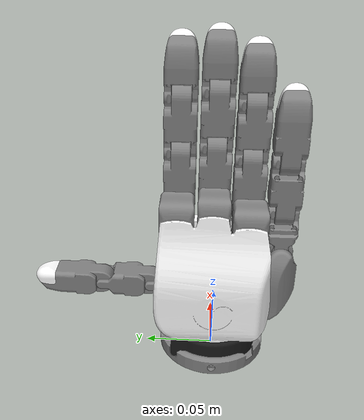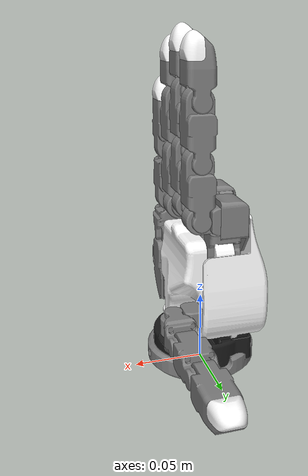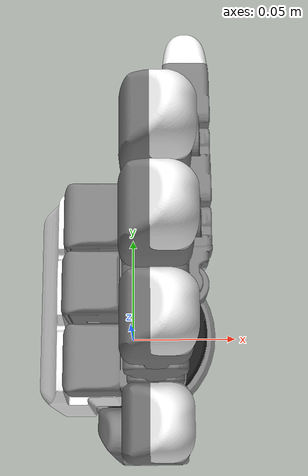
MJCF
<mujoco model="tesollo_dg5f_right_short">
  <compiler angle="radian" meshdir="assets"/>

  <asset>
    <mesh name="rl_dg_s_mount" file="rl_dg_s_mount.obj"/>
    <mesh name="rl_dg_s_base" file="rl_dg_s_base.obj"/>
    <mesh name="rl_dg_palm" file="rl_dg_palm.obj"/>
    <mesh name="rl_dg_1_1" file="rl_dg_1_1.obj"/>
    <mesh name="rl_dg_1_2" file="rl_dg_1_2.obj"/>
    <mesh name="rl_dg_1_3" file="rl_dg_1_3.obj"/>
    <mesh name="rl_dg_1_4" file="rl_dg_1_4.obj"/>
    <mesh name="rl_dg_1_tip" file="rl_dg_1_tip.obj"/>
    <mesh name="rl_dg_2_1" file="rl_dg_2_1.obj"/>
    <mesh name="rl_dg_2_2" file="rl_dg_2_2.obj"/>
    <mesh name="rl_dg_2_3" file="rl_dg_2_3.obj"/>
    <mesh name="rl_dg_2_4" file="rl_dg_2_4.obj"/>
    <mesh name="rl_dg_2_tip" file="rl_dg_2_tip.obj"/>
    <mesh name="rl_dg_3_1" file="rl_dg_3_1.obj"/>
    <mesh name="rl_dg_3_2" file="rl_dg_3_2.obj"/>
    <mesh name="rl_dg_3_3" file="rl_dg_3_3.obj"/>
    <mesh name="rl_dg_3_4" file="rl_dg_3_4.obj"/>
    <mesh name="rl_dg_3_tip" file="rl_dg_3_tip.obj"/>
    <mesh name="rl_dg_4_1" file="rl_dg_4_1.obj"/>
    <mesh name="rl_dg_4_2" file="rl_dg_4_2.obj"/>
    <mesh name="rl_dg_4_3" file="rl_dg_4_3.obj"/>
    <mesh name="rl_dg_4_4" file="rl_dg_4_4.obj"/>
    <mesh name="rl_dg_4_tip" file="rl_dg_4_tip.obj"/>
    <mesh name="rl_dg_5_1" file="rl_dg_5_1.obj"/>
    <mesh name="rl_dg_5_2" file="rl_dg_5_2.obj"/>
    <mesh name="rl_dg_5_3" file="rl_dg_5_3.obj"/>
    <mesh name="rl_dg_5_4" file="rl_dg_5_4.obj"/>
    <mesh name="rl_dg_5_tip" file="rl_dg_5_tip.obj"/>
  </asset>

  <default>
    <default class="dg5f_right_short">
      <default class="visual">
        <geom type="mesh" contype="0" conaffinity="0" group="2" rgba="0.25 0.25 0.25 1"/>
      </default>

      <default class="collision">
        <geom type="mesh" group="3" rgba="0.25 0.25 0.25 1" mass="0"/>
      </default>

      <joint armature="0.001" damping="0.05" frictionloss="0.001" actuatorfrcrange="-7.5 7.5"/>
    </default>
  </default>

  <worldbody>
    <body name="base" childclass="dg5f_right_short">
      <body name="palm">
        <geom type="mesh" mesh="rl_dg_s_mount"/>
        <geom pos="0 0 0.0045" type="mesh" rgba="0.1 0.1 0.1 1" mesh="rl_dg_s_base"/>
        <geom pos="0 0 0.0265" type="mesh" rgba="1 1 1 1" mesh="rl_dg_palm"/>
      </body>
      <body name="rl_dg_1_1" pos="-0.0162 0.019 0.0393">
        <inertial pos="0.021473 3.1163e-06 0.0028146" quat="0.414969 0.572521 0.572945 0.414433" mass="0.045" diaginertia="1.3718e-05 1.31155e-05 3.31624e-06"/>
        <joint name="rj_dg_1_1" axis="1 0 0" range="-0.383972 1.3439"/>
        <geom type="mesh" mesh="rl_dg_1_1"/>
        <body name="rl_dg_1_2" pos="0.04195 0 0">
          <inertial pos="0.00055633 0.0155 0.00055633" quat="0.379972 0.152995 -0.59634 0.690357" mass="0.025" diaginertia="2.07162e-06 1.99661e-06 1.37777e-06"/>
          <joint name="rj_dg_1_2" axis="0 0 -1" range="0 2.70526"/>
          <geom type="mesh" mesh="rl_dg_1_2"/>
          <body name="rl_dg_1_3" pos="0 0.031 0">
            <inertial pos="2.3008e-05 0.014842 4.7446e-06" quat="0.523748 0.473568 -0.525398 0.474739" mass="0.045" diaginertia="6.4181e-06 6.01585e-06 2.42154e-06"/>
            <joint name="rj_dg_1_3" axis="1 0 0" range="-1.5708 1.5708"/>
            <geom type="mesh" mesh="rl_dg_1_3"/>
            <body name="rl_dg_1_4" pos="0 0.0388 0">
              <inertial pos="-0.000182282 0.0140657 0.000732812" quat="0.521074 0.440882 -0.475371 0.555092" mass="0.05" diaginertia="2.0651e-05 2.02971e-05 3.29812e-06"/>
              <joint name="rj_dg_1_4" axis="1 0 0" range="-1.5708 1.5708"/>
              <geom type="mesh" mesh="rl_dg_1_4"/>
              <geom pos="0 0.0363 0" type="mesh" rgba="1 1 1 1" mesh="rl_dg_1_tip"/>
            </body>
          </body>
        </body>
      </body>
      <body name="rl_dg_2_1" pos="-0.0071 0.027 0.0926">
        <inertial pos="0.001061 0.00024417 0.023499" quat="0.632598 0.317074 0.297256 0.641032" mass="0.045" diaginertia="9.53287e-06 8.0012e-06 5.63792e-06"/>
        <joint name="rj_dg_2_1" axis="1 0 0" range="-0.541052 0.349066"/>
        <geom type="mesh" mesh="rl_dg_2_1"/>
        <body name="rl_dg_2_2" pos="0.01765 0 0.0265">
          <inertial pos="-4.7446e-06 2.3008e-05 0.023958" quat="0.998727 0.0504191 0.000239574 0.00141058" mass="0.045" diaginertia="6.4181e-06 6.01585e-06 2.42154e-06"/>
          <joint name="rj_dg_2_2" axis="0 1 0" range="0 2.00713"/>
          <geom type="mesh" mesh="rl_dg_2_2"/>
          <body name="rl_dg_2_3" pos="0 0 0.0388">
            <inertial pos="-4.7446e-06 2.3008e-05 0.023958" quat="0.998727 0.0504191 0.000239574 0.00141058" mass="0.045" diaginertia="6.4181e-06 6.01585e-06 2.42154e-06"/>
            <joint name="rj_dg_2_3" axis="0 1 0" range="-1.5708 1.5708"/>
            <geom type="mesh" mesh="rl_dg_2_3"/>
            <body name="rl_dg_2_4" pos="0 0 0.0388">
              <inertial pos="4.4568e-05 -0.00389127 0.0160588" quat="0.526445 0.843914 -0.0138865 0.10233" mass="0.03" diaginertia="6.58495e-06 5.22897e-06 2.6024e-06"/>
              <joint name="rj_dg_2_4" axis="0 1 0" range="-1.5708 1.5708"/>
              <geom type="mesh" mesh="rl_dg_2_4"/>
              <geom pos="0 0 0.0255" type="mesh" rgba="1 1 1 1" mesh="rl_dg_2_tip"/>
            </body>
          </body>
        </body>
      </body>
      <body name="rl_dg_3_1" pos="-0.0071 0.0025 0.0966">
        <inertial pos="0.0012558 -0.00017703 0.023374" quat="0.648691 0.313074 0.303523 0.623746" mass="0.045" diaginertia="9.33725e-06 7.69718e-06 5.31337e-06"/>
        <joint name="rj_dg_3_1" axis="1 0 0" range="-0.523599 0.523599"/>
        <geom type="mesh" mesh="rl_dg_3_1"/>
        <body name="rl_dg_3_2" pos="0.01765 0 0.0265">
          <inertial pos="-4.7446e-06 2.3008e-05 0.023958" quat="0.998727 0.0504191 0.000239574 0.00141058" mass="0.045" diaginertia="6.4181e-06 6.01585e-06 2.42154e-06"/>
          <joint name="rj_dg_3_2" axis="0 1 0" range="0 2.00713"/>
          <geom type="mesh" mesh="rl_dg_3_2"/>
          <body name="rl_dg_3_3" pos="0 0 0.0388">
            <inertial pos="-4.7446e-06 2.3008e-05 0.023958" quat="0.998727 0.0504191 0.000239574 0.00141058" mass="0.045" diaginertia="6.4181e-06 6.01585e-06 2.42154e-06"/>
            <joint name="rj_dg_3_3" axis="0 1 0" range="-1.5708 1.5708"/>
            <geom type="mesh" mesh="rl_dg_3_3"/>
            <body name="rl_dg_3_4" pos="0 0 0.0388">
              <inertial pos="4.4568e-05 -0.00389127 0.0160588" quat="0.526445 0.843914 -0.0138865 0.10233" mass="0.03" diaginertia="6.58495e-06 5.22897e-06 2.6024e-06"/>
              <joint name="rj_dg_3_4" axis="0 1 0" range="-1.5708 1.5708"/>
              <geom type="mesh" mesh="rl_dg_3_4"/>
              <geom pos="0 0 0.0255" type="mesh" rgba="1 1 1 1" mesh="rl_dg_3_tip"/>
            </body>
          </body>
        </body>
      </body>
      <body name="rl_dg_4_1" pos="-0.0071 -0.022 0.0886">
        <inertial pos="6.0566e-05 -0.00058566 0.023499" quat="0.666108 0.307837 0.308411 0.605327" mass="0.045" diaginertia="9.54523e-06 7.99297e-06 5.6344e-06"/>
        <joint name="rj_dg_4_1" axis="1 0 0" range="-0.261799 0.558505"/>
        <geom type="mesh" mesh="rl_dg_4_1"/>
        <body name="rl_dg_4_2" pos="0.01765 0 0.0265">
          <inertial pos="-4.7446e-06 2.3008e-05 0.023958" quat="0.998727 0.0504191 0.000239574 0.00141058" mass="0.045" diaginertia="6.4181e-06 6.01585e-06 2.42154e-06"/>
          <joint name="rj_dg_4_2" axis="0 1 0" range="0 1.91986"/>
          <geom type="mesh" mesh="rl_dg_4_2"/>
          <body name="rl_dg_4_3" pos="0 0 0.0388">
            <inertial pos="-4.7446e-06 2.3008e-05 0.023958" quat="0.998727 0.0504191 0.000239574 0.00141058" mass="0.045" diaginertia="6.4181e-06 6.01585e-06 2.42154e-06"/>
            <joint name="rj_dg_4_3" axis="0 1 0" range="-1.5708 1.5708"/>
            <geom type="mesh" mesh="rl_dg_4_3"/>
            <body name="rl_dg_4_4" pos="0 0 0.0388">
              <inertial pos="4.4568e-05 -0.00389127 0.0160588" quat="0.526445 0.843914 -0.0138865 0.10233" mass="0.03" diaginertia="6.58495e-06 5.22897e-06 2.6024e-06"/>
              <joint name="rj_dg_4_4" axis="0 1 0" range="-1.5708 1.5708"/>
              <geom type="mesh" mesh="rl_dg_4_4"/>
              <geom pos="0 0 0.0255" type="mesh" rgba="1 1 1 1" mesh="rl_dg_4_tip"/>
            </body>
          </body>
        </body>
      </body>
      <body name="rl_dg_5_1" pos="0.0103 -0.0195 0.0447">
        <inertial pos="-0.00433014 -0.0250157 0.0140244" quat="0.856441 0.0940801 -0.138609 0.488309" mass="0.055" diaginertia="2.56498e-05 2.33809e-05 9.54179e-06"/>
        <joint name="rj_dg_5_1" axis="0 0 1" range="0 1.0472"/>
        <geom type="mesh" mesh="rl_dg_5_1"/>
        <body name="rl_dg_5_2" pos="0 -0.028 0.0381">
          <inertial pos="-0.000537631 0.000537631 0.0155001" quat="0.909406 -0.067474 0.162898 0.376687" mass="0.025" diaginertia="2.06912e-06 2.00204e-06 1.37635e-06"/>
          <joint name="rj_dg_5_2" axis="1 0 0" range="-0.261799 1.5708"/>
          <geom type="mesh" mesh="rl_dg_5_2"/>
          <body name="rl_dg_5_3" pos="0 0 0.031">
            <inertial pos="4.74465e-06 2.30084e-05 0.0148419" quat="0.998727 -0.05042 0.000239567 -0.00141066" mass="0.045" diaginertia="6.41806e-06 6.01584e-06 2.42155e-06"/>
            <joint name="rj_dg_5_3" axis="0 1 0" range="-1.5708 1.5708"/>
            <geom type="mesh" mesh="rl_dg_5_3"/>
            <body name="rl_dg_5_4" pos="0 0 0.0388">
              <inertial pos="5.2052e-05 -0.00381428 0.0176289" quat="0.94731 -0.315963 -0.040746 0.0333238" mass="0.05" diaginertia="1.67134e-05 1.18894e-05 7.53281e-06"/>
              <joint name="rj_dg_5_4" axis="0 1 0" range="-1.5708 1.5708"/>
              <geom type="mesh" mesh="rl_dg_5_4"/>
              <geom pos="0 0 0.0363" type="mesh" rgba="1 1 1 1" mesh="rl_dg_5_tip"/>
            </body>
          </body>
        </body>
      </body>
    </body>
  </worldbody>

<contact>
  <exclude body1="palm" body2="rl_dg_1_1"/>
  <exclude body1="palm" body2="rl_dg_1_2"/>
  <exclude body1="palm" body2="rl_dg_2_1"/>
  <exclude body1="palm" body2="rl_dg_3_1"/>
  <exclude body1="palm" body2="rl_dg_4_1"/>
  <exclude body1="palm" body2="rl_dg_4_2"/>
  <exclude body1="palm" body2="rl_dg_5_1"/>
</contact>

  <actuator>
    <position name="rj_dg_1_1" joint="rj_dg_1_1" ctrlrange="-0.383972 1.3439"/>
    <position name="rj_dg_1_2" joint="rj_dg_1_2" ctrlrange="0 2.70526"/>
    <position name="rj_dg_1_3" joint="rj_dg_1_3" ctrlrange="-1.5708 1.5708"/>
    <position name="rj_dg_1_4" joint="rj_dg_1_4" ctrlrange="-1.5708 1.5708"/>
    <position name="rj_dg_2_1" joint="rj_dg_2_1" ctrlrange="-0.541052 0.349066"/>
    <position name="rj_dg_2_2" joint="rj_dg_2_2" ctrlrange="0 2.00713"/>
    <position name="rj_dg_2_3" joint="rj_dg_2_3" ctrlrange="-1.5708 1.5708"/>
    <position name="rj_dg_2_4" joint="rj_dg_2_4" ctrlrange="-1.5708 1.5708"/>
    <position name="rj_dg_3_1" joint="rj_dg_3_1" ctrlrange="-0.523599 0.523599"/>
    <position name="rj_dg_3_2" joint="rj_dg_3_2" ctrlrange="0 2.00713"/>
    <position name="rj_dg_3_3" joint="rj_dg_3_3" ctrlrange="-1.5708 1.5708"/>
    <position name="rj_dg_3_4" joint="rj_dg_3_4" ctrlrange="-1.5708 1.5708"/>
    <position name="rj_dg_4_1" joint="rj_dg_4_1" ctrlrange="-0.261799 0.558505"/>
    <position name="rj_dg_4_2" joint="rj_dg_4_2" ctrlrange="0 1.91986"/>
    <position name="rj_dg_4_3" joint="rj_dg_4_3" ctrlrange="-1.5708 1.5708"/>
    <position name="rj_dg_4_4" joint="rj_dg_4_4" ctrlrange="-1.5708 1.5708"/>
    <position name="rj_dg_5_1" joint="rj_dg_5_1" ctrlrange="0 1.0472"/>
    <position name="rj_dg_5_2" joint="rj_dg_5_2" ctrlrange="-0.261799 1.5708"/>
    <position name="rj_dg_5_3" joint="rj_dg_5_3" ctrlrange="-1.5708 1.5708"/>
    <position name="rj_dg_5_4" joint="rj_dg_5_4" ctrlrange="-1.5708 1.5708"/>
  </actuator>
</mujoco>
